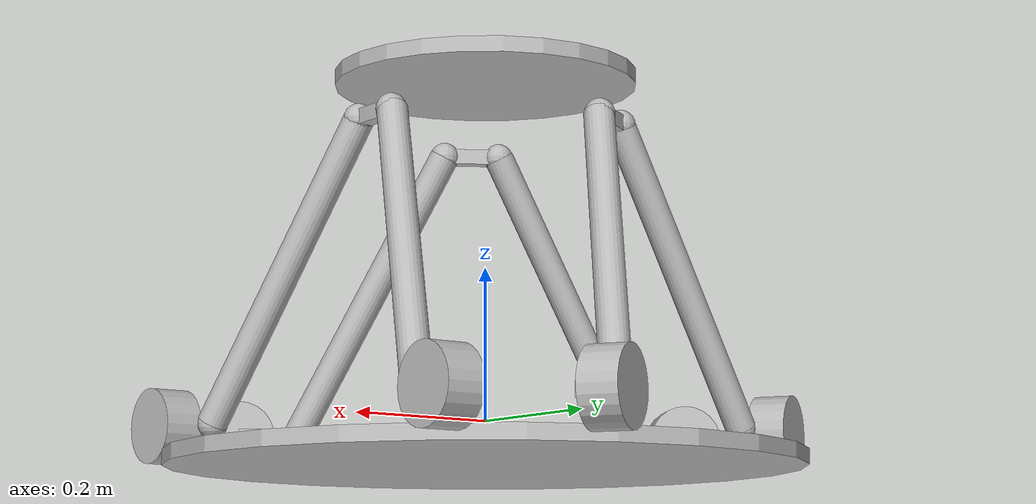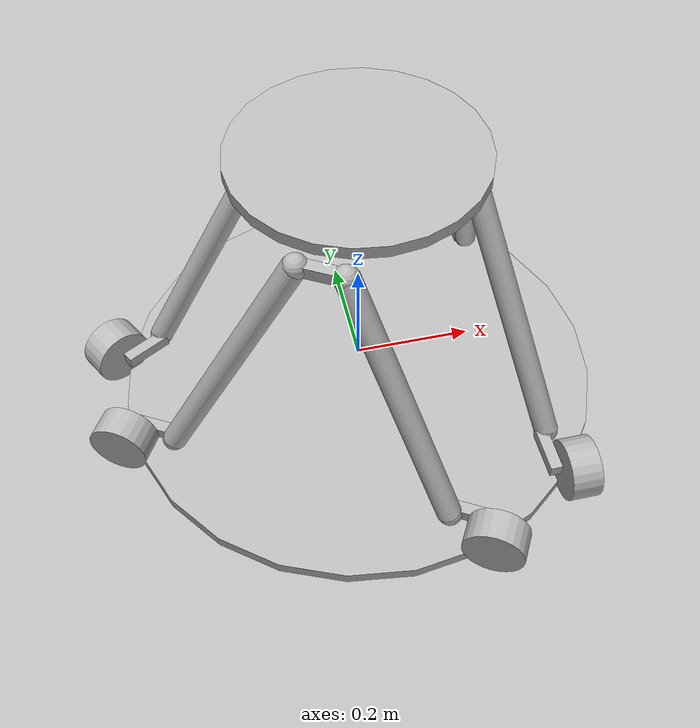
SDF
<?xml version="1.0" ?>

<sdf version="1.5">
<model name="stewart_platform">

	<!-- ** Links Definitions ** -->
	<!-- * Base Definitions * -->
	<link name="base_link">
		<!-- Position -->
		<pose>0 0  -0.05  0 0 0</pose>
		<!-- Shape -->
		<collision name="collision">
        <geometry>
          <cylinder>
            <radius> 0.4138840417314975 </radius>
            <length> 0.02 </length>
          </cylinder>
        </geometry>
      </collision>
      <visual name="visual">
        <geometry>
          <cylinder>
            <radius> 0.4138840417314975 </radius>
            <length> 0.02 </length>
          </cylinder>
        </geometry>
      </visual>
	</link>
	<!-- * Base Definitions * -->
	<link name="platform_link">
		<!-- Position -->
		<pose>0 0  0.45  0 0 0</pose>
		<!-- Shape -->
		<collision name="collision">
        <geometry>
          <cylinder>
            <radius> 0.1984313483298443 </radius>
            <length> 0.02 </length>
          </cylinder>
        </geometry>
      </collision>
      <visual name="visual">
        <geometry>
          <cylinder>
            <radius> 0.1984313483298443 </radius>
            <length> 0.02 </length>
          </cylinder>
        </geometry>
      </visual>
	</link>

		<!-- * Motor Definitions * -->
		<link name= "motor_0_link">
			<!-- Position -->
			<pose> 0.29346787517317596 -0.315 0 1.5707963267948966 0 1.5707963267948966</pose>
			<!-- Shape -->
			<collision name="collision">
        <geometry>
          <cylinder>
            <radius> 0.05 </radius>
            <length> 0.05 </length>
          </cylinder>
        </geometry>
      </collision>
      <visual name="visual">
        <geometry>
          <cylinder>
            <radius> 0.05 </radius>
            <length> 0.05 </length>
          </cylinder>
        </geometry>
      </visual>
		</link>
		<!-- * ARM Definitions * -->
		<link name="arm_0_link">
			<!-- Position -->
			<pose>  0.25846787517317593 -0.275 0 1.5707963267948966 0 0.0</pose>
			<!-- Shape -->
			<collision name="collision">
        <geometry>
         <box>
	     <size> 0.02 0.02 0.08 </size>
	 </box>
        </geometry>
      </collision>
      <visual name="visual">
        <geometry>
          <box>
	     <size> 0.02 0.02 0.08 </size>
	 </box>
        </geometry>
      </visual>
		</link>
		<!-- * RotuleDown Definitions * -->
		<link name="rotuleDown_0_link">
			<!-- Position -->
			<pose>  0.26846787517317594 -0.235 0 0 0 0 </pose>
			<!-- Shape -->
			<collision name="collision">
        <geometry>
          <sphere>
	    <radius> 0.02 </radius>
	 </sphere>
        </geometry>
      </collision>
      <visual name="visual">
        <geometry>
          <sphere>
	    <radius> 0.02 </radius>
	 </sphere>
        </geometry>
      </visual>
		</link>
		<!-- * Leg Definitions * -->
		<link name= "leg_0_link">
			<!-- Position -->
			<pose> 0.22166179551233733 -0.13624999999999998 0.190938808016556 0.5198299274421689 0 -2.690311012359247</pose>
			<!-- Shape -->
			<collision name="collision">
        <geometry>
          <cylinder>
            <radius> 0.02 </radius>
            <length> 0.44 </length>
          </cylinder>
        </geometry>
      </collision>
      <visual name="visual">
        <geometry>
          <cylinder>
            <radius> 0.02 </radius>
            <length> 0.44 </length>
          </cylinder>
        </geometry>
      </visual>
		</link>
		<!-- * RotuleUp Definitions * -->
		<link name="rotuleUp_0_link">
			<!-- Position -->
			<pose>  0.17485571585149873 -0.0375 0.381877616033112 0 0 0</pose>
			<!-- Shape -->
			<collision name="collision">
        <geometry>
          <sphere>
	    <radius> 0.02 </radius>
	 </sphere>
        </geometry>
      </collision>
      <visual name="visual">
        <geometry>
          <sphere>
	    <radius> 0.02 </radius>
	 </sphere>
        </geometry>
      </visual>
		</link>

		<!-- * Holder Definitions * -->
		<link name="holder_0_link">
			<!-- Position -->
			<pose>  0.17485571585149873 0.0 0.381877616033112 1.5707963267948966 0 0.0</pose>
			<!-- Shape -->
			<collision name="collision">
        <geometry>
         <box>
	     <size> 0.02 0.02 0.075 </size>
	 </box>
        </geometry>
      </collision>
      <visual name="visual">
        <geometry>
          <box>
	     <size> 0.02 0.02 0.075 </size>
	 </box>
        </geometry>
      </visual>
		</link>

		<!-- ** Joints Definitions ** -->
		<!-- * Platform-Motor Joint Definitions * -->
		<joint name="mot_fixed_0_joint" type="fixed">
			<parent>base_link</parent>
			<child>motor_0_link</child>
		</joint>
		<!-- * Motor-Arm Joint Definitions * -->
		<joint name="motor_0" type="revolute">
			<pose frame= "arm_0"> 0 0 0.04 0 0 </pose>
			<parent>motor_0_link</parent>
			<child>arm_0_link</child>
			<axis>
				<xyz>1 0 0</xyz>
			</axis>
		</joint>
		<!-- * Arm-RotuleDown Joint Definitions * -->
		<joint name="arm_rotDown_0_joint" type="fixed">
			<parent>arm_0_link</parent>
			<child>rotuleDown_0_link</child>
		</joint>
		<!-- * RotuleDown-Leg Joint Definitions * -->
		<joint name="rotDown_leg_0_joint" type="ball">
			<pose frame= "arm_0_link"> 0 0 -0.22 0 0 </pose>
			<parent>rotuleDown_0_link</parent>
			<child>leg_0_link</child>
		</joint>
		<!-- * Leg-RotuleUp Joint Definitions * -->
		<joint name="arm_rotUp_0_joint" type="fixed">
			<parent>leg_0_link</parent>
			<child>rotuleUp_0_link</child>
		</joint>
		<!-- * RotuleUp-Holder Joint Definitions * -->
		<joint name="rotUp_platform_0_joint" type="ball">
			<pose frame="rotuleUp_0_link"> 0 0 0 0 0 </pose>
			<child>rotuleUp_0_link</child>
			<parent>holder_0_link</parent>
		</joint>

		<!-- * RotuleUp-Holder Joint Definitions * -->
		<joint name="holder_platform_0_joint" type="fixed">
			<parent>holder_0_link</parent>
			<child>platform_link</child>
		</joint>

		<!-- * Motor Definitions * -->
		<link name= "motor_1_link">
			<!-- Position -->
			<pose> 0.29346787517317596 0.315 0 1.5707963267948966 0 1.5707963267948966</pose>
			<!-- Shape -->
			<collision name="collision">
        <geometry>
          <cylinder>
            <radius> 0.05 </radius>
            <length> 0.05 </length>
          </cylinder>
        </geometry>
      </collision>
      <visual name="visual">
        <geometry>
          <cylinder>
            <radius> 0.05 </radius>
            <length> 0.05 </length>
          </cylinder>
        </geometry>
      </visual>
		</link>
		<!-- * ARM Definitions * -->
		<link name="arm_1_link">
			<!-- Position -->
			<pose>  0.25846787517317593 0.275 0 1.5707963267948966 0 0.0</pose>
			<!-- Shape -->
			<collision name="collision">
        <geometry>
         <box>
	     <size> 0.02 0.02 0.08 </size>
	 </box>
        </geometry>
      </collision>
      <visual name="visual">
        <geometry>
          <box>
	     <size> 0.02 0.02 0.08 </size>
	 </box>
        </geometry>
      </visual>
		</link>
		<!-- * RotuleDown Definitions * -->
		<link name="rotuleDown_1_link">
			<!-- Position -->
			<pose>  0.26846787517317594 0.235 0 0 0 0 </pose>
			<!-- Shape -->
			<collision name="collision">
        <geometry>
          <sphere>
	    <radius> 0.02 </radius>
	 </sphere>
        </geometry>
      </collision>
      <visual name="visual">
        <geometry>
          <sphere>
	    <radius> 0.02 </radius>
	 </sphere>
        </geometry>
      </visual>
		</link>
		<!-- * Leg Definitions * -->
		<link name= "leg_1_link">
			<!-- Position -->
			<pose> 0.22166179551233733 0.13624999999999998 0.190938808016556 0.5198299274421689 0 -0.45128164123054637</pose>
			<!-- Shape -->
			<collision name="collision">
        <geometry>
          <cylinder>
            <radius> 0.02 </radius>
            <length> 0.44 </length>
          </cylinder>
        </geometry>
      </collision>
      <visual name="visual">
        <geometry>
          <cylinder>
            <radius> 0.02 </radius>
            <length> 0.44 </length>
          </cylinder>
        </geometry>
      </visual>
		</link>
		<!-- * RotuleUp Definitions * -->
		<link name="rotuleUp_1_link">
			<!-- Position -->
			<pose>  0.17485571585149873 0.0375 0.381877616033112 0 0 0</pose>
			<!-- Shape -->
			<collision name="collision">
        <geometry>
          <sphere>
	    <radius> 0.02 </radius>
	 </sphere>
        </geometry>
      </collision>
      <visual name="visual">
        <geometry>
          <sphere>
	    <radius> 0.02 </radius>
	 </sphere>
        </geometry>
      </visual>
		</link>

		<!-- ** Joints Definitions ** -->
		<!-- * Platform-Motor Joint Definitions * -->
		<joint name="mot_fixed_1_joint" type="fixed">
			<parent>base_link</parent>
			<child>motor_1_link</child>
		</joint>
		<!-- * Motor-Arm Joint Definitions * -->
		<joint name="motor_1" type="revolute">
			<pose frame= "arm_1"> 0 0 -0.04 0 0 </pose>
			<parent>motor_1_link</parent>
			<child>arm_1_link</child>
			<axis>
				<xyz>1 0 0</xyz>
			</axis>
		</joint>
		<!-- * Arm-RotuleDown Joint Definitions * -->
		<joint name="arm_rotDown_1_joint" type="fixed">
			<parent>arm_1_link</parent>
			<child>rotuleDown_1_link</child>
		</joint>
		<!-- * RotuleDown-Leg Joint Definitions * -->
		<joint name="rotDown_leg_1_joint" type="ball">
			<pose frame= "arm_1_link"> 0 0 -0.22 0 0 </pose>
			<parent>rotuleDown_1_link</parent>
			<child>leg_1_link</child>
		</joint>
		<!-- * Leg-RotuleUp Joint Definitions * -->
		<joint name="arm_rotUp_1_joint" type="fixed">
			<parent>leg_1_link</parent>
			<child>rotuleUp_1_link</child>
		</joint>
		<!-- * RotuleUp-Holder Joint Definitions * -->
		<joint name="rotUp_platform_1_joint" type="ball">
			<pose frame="rotuleUp_1_link"> 0 0 0 0 0 </pose>
			<child>rotuleUp_1_link</child>
			<parent>holder_0_link</parent>
		</joint>

		<!-- * Motor Definitions * -->
		<link name= "motor_2_link">
			<!-- Position -->
			<pose> 0.12606406460551028 0.41165063509461086 0 1.5707963267948966 0 3.665191429188092</pose>
			<!-- Shape -->
			<collision name="collision">
        <geometry>
          <cylinder>
            <radius> 0.05 </radius>
            <length> 0.05 </length>
          </cylinder>
        </geometry>
      </collision>
      <visual name="visual">
        <geometry>
          <cylinder>
            <radius> 0.05 </radius>
            <length> 0.05 </length>
          </cylinder>
        </geometry>
      </visual>
		</link>
		<!-- * ARM Definitions * -->
		<link name="arm_2_link">
			<!-- Position -->
			<pose>  0.10892304845413273 0.36133974596215557 0 1.5707963267948966 0 2.0943951023931953</pose>
			<!-- Shape -->
			<collision name="collision">
        <geometry>
         <box>
	     <size> 0.02 0.02 0.08 </size>
	 </box>
        </geometry>
      </collision>
      <visual name="visual">
        <geometry>
          <box>
	     <size> 0.02 0.02 0.08 </size>
	 </box>
        </geometry>
      </visual>
		</link>
		<!-- * RotuleDown Definitions * -->
		<link name="rotuleDown_2_link">
			<!-- Position -->
			<pose>  0.06928203230275518 0.3499999999999999 0 0 0 0 </pose>
			<!-- Shape -->
			<collision name="collision">
        <geometry>
          <sphere>
	    <radius> 0.02 </radius>
	 </sphere>
        </geometry>
      </collision>
      <visual name="visual">
        <geometry>
          <sphere>
	    <radius> 0.02 </radius>
	 </sphere>
        </geometry>
      </visual>
		</link>
		<!-- * Leg Definitions * -->
		<link name= "leg_2_link">
			<!-- Position -->
			<pose> 0.007165063509461146 0.2600897459621556 0.190938808016556 0.5198299274421689 0 -0.5959159099660516</pose>
			<!-- Shape -->
			<collision name="collision">
        <geometry>
          <cylinder>
            <radius> 0.02 </radius>
            <length> 0.44 </length>
          </cylinder>
        </geometry>
      </collision>
      <visual name="visual">
        <geometry>
          <cylinder>
            <radius> 0.02 </radius>
            <length> 0.44 </length>
          </cylinder>
        </geometry>
      </visual>
		</link>
		<!-- * RotuleUp Definitions * -->
		<link name="rotuleUp_2_link">
			<!-- Position -->
			<pose>  -0.05495190528383288 0.17017949192431125 0.381877616033112 0 0 0</pose>
			<!-- Shape -->
			<collision name="collision">
        <geometry>
          <sphere>
	    <radius> 0.02 </radius>
	 </sphere>
        </geometry>
      </collision>
      <visual name="visual">
        <geometry>
          <sphere>
	    <radius> 0.02 </radius>
	 </sphere>
        </geometry>
      </visual>
		</link>

		<!-- * Holder Definitions * -->
		<link name="holder_1_link">
			<!-- Position -->
			<pose>  -0.08742785792574934 0.15142949192431127 0.381877616033112 1.5707963267948966 0 2.0943951023931953</pose>
			<!-- Shape -->
			<collision name="collision">
        <geometry>
         <box>
	     <size> 0.02 0.02 0.075 </size>
	 </box>
        </geometry>
      </collision>
      <visual name="visual">
        <geometry>
          <box>
	     <size> 0.02 0.02 0.075 </size>
	 </box>
        </geometry>
      </visual>
		</link>

		<!-- ** Joints Definitions ** -->
		<!-- * Platform-Motor Joint Definitions * -->
		<joint name="mot_fixed_2_joint" type="fixed">
			<parent>base_link</parent>
			<child>motor_2_link</child>
		</joint>
		<!-- * Motor-Arm Joint Definitions * -->
		<joint name="motor_2" type="revolute">
			<pose frame= "arm_2"> 0 0 0.04 0 0 </pose>
			<parent>motor_2_link</parent>
			<child>arm_2_link</child>
			<axis>
				<xyz>1 0 0</xyz>
			</axis>
		</joint>
		<!-- * Arm-RotuleDown Joint Definitions * -->
		<joint name="arm_rotDown_2_joint" type="fixed">
			<parent>arm_2_link</parent>
			<child>rotuleDown_2_link</child>
		</joint>
		<!-- * RotuleDown-Leg Joint Definitions * -->
		<joint name="rotDown_leg_2_joint" type="ball">
			<pose frame= "arm_2_link"> 0 0 -0.22 0 0 </pose>
			<parent>rotuleDown_2_link</parent>
			<child>leg_2_link</child>
		</joint>
		<!-- * Leg-RotuleUp Joint Definitions * -->
		<joint name="arm_rotUp_2_joint" type="fixed">
			<parent>leg_2_link</parent>
			<child>rotuleUp_2_link</child>
		</joint>
		<!-- * RotuleUp-Holder Joint Definitions * -->
		<joint name="rotUp_platform_2_joint" type="ball">
			<pose frame="rotuleUp_2_link"> 0 0 0 0 0 </pose>
			<child>rotuleUp_2_link</child>
			<parent>holder_1_link</parent>
		</joint>

		<!-- * RotuleUp-Holder Joint Definitions * -->
		<joint name="holder_platform_1_joint" type="fixed">
			<parent>holder_1_link</parent>
			<child>platform_link</child>
		</joint>

		<!-- * Motor Definitions * -->
		<link name= "motor_3_link">
			<!-- Position -->
			<pose> -0.41953193977868614 0.09665063509461105 0 1.5707963267948966 0 3.665191429188092</pose>
			<!-- Shape -->
			<collision name="collision">
        <geometry>
          <cylinder>
            <radius> 0.05 </radius>
            <length> 0.05 </length>
          </cylinder>
        </geometry>
      </collision>
      <visual name="visual">
        <geometry>
          <cylinder>
            <radius> 0.05 </radius>
            <length> 0.05 </length>
          </cylinder>
        </geometry>
      </visual>
		</link>
		<!-- * ARM Definitions * -->
		<link name="arm_3_link">
			<!-- Position -->
			<pose>  -0.3673909236273086 0.08633974596215568 0 1.5707963267948966 0 2.0943951023931953</pose>
			<!-- Shape -->
			<collision name="collision">
        <geometry>
         <box>
	     <size> 0.02 0.02 0.08 </size>
	 </box>
        </geometry>
      </collision>
      <visual name="visual">
        <geometry>
          <box>
	     <size> 0.02 0.02 0.08 </size>
	 </box>
        </geometry>
      </visual>
		</link>
		<!-- * RotuleDown Definitions * -->
		<link name="rotuleDown_3_link">
			<!-- Position -->
			<pose>  -0.33774990747593103 0.11500000000000006 0 0 0 0 </pose>
			<!-- Shape -->
			<collision name="collision">
        <geometry>
          <sphere>
	    <radius> 0.02 </radius>
	 </sphere>
        </geometry>
      </collision>
      <visual name="visual">
        <geometry>
          <sphere>
	    <radius> 0.02 </radius>
	 </sphere>
        </geometry>
      </visual>
		</link>
		<!-- * Leg Definitions * -->
		<link name= "leg_3_link">
			<!-- Position -->
			<pose> -0.2288268590217984 0.12383974596215566 0.190938808016556 0.5198299274421689 0 1.6431134611626488</pose>
			<!-- Shape -->
			<collision name="collision">
        <geometry>
          <cylinder>
            <radius> 0.02 </radius>
            <length> 0.44 </length>
          </cylinder>
        </geometry>
      </collision>
      <visual name="visual">
        <geometry>
          <cylinder>
            <radius> 0.02 </radius>
            <length> 0.44 </length>
          </cylinder>
        </geometry>
      </visual>
		</link>
		<!-- * RotuleUp Definitions * -->
		<link name="rotuleUp_3_link">
			<!-- Position -->
			<pose>  -0.11990381056766576 0.13267949192431125 0.381877616033112 0 0 0</pose>
			<!-- Shape -->
			<collision name="collision">
        <geometry>
          <sphere>
	    <radius> 0.02 </radius>
	 </sphere>
        </geometry>
      </collision>
      <visual name="visual">
        <geometry>
          <sphere>
	    <radius> 0.02 </radius>
	 </sphere>
        </geometry>
      </visual>
		</link>

		<!-- ** Joints Definitions ** -->
		<!-- * Platform-Motor Joint Definitions * -->
		<joint name="mot_fixed_3_joint" type="fixed">
			<parent>base_link</parent>
			<child>motor_3_link</child>
		</joint>
		<!-- * Motor-Arm Joint Definitions * -->
		<joint name="motor_3" type="revolute">
			<pose frame= "arm_3"> 0 0 -0.04 0 0 </pose>
			<parent>motor_3_link</parent>
			<child>arm_3_link</child>
			<axis>
				<xyz>1 0 0</xyz>
			</axis>
		</joint>
		<!-- * Arm-RotuleDown Joint Definitions * -->
		<joint name="arm_rotDown_3_joint" type="fixed">
			<parent>arm_3_link</parent>
			<child>rotuleDown_3_link</child>
		</joint>
		<!-- * RotuleDown-Leg Joint Definitions * -->
		<joint name="rotDown_leg_3_joint" type="ball">
			<pose frame= "arm_3_link"> 0 0 -0.22 0 0 </pose>
			<parent>rotuleDown_3_link</parent>
			<child>leg_3_link</child>
		</joint>
		<!-- * Leg-RotuleUp Joint Definitions * -->
		<joint name="arm_rotUp_3_joint" type="fixed">
			<parent>leg_3_link</parent>
			<child>rotuleUp_3_link</child>
		</joint>
		<!-- * RotuleUp-Holder Joint Definitions * -->
		<joint name="rotUp_platform_3_joint" type="ball">
			<pose frame="rotuleUp_3_link"> 0 0 0 0 0 </pose>
			<child>rotuleUp_3_link</child>
			<parent>holder_1_link</parent>
		</joint>

		<!-- * Motor Definitions * -->
		<link name= "motor_4_link">
			<!-- Position -->
			<pose> -0.4195319397786862 -0.09665063509461076 0 1.5707963267948966 0 5.759586531581287</pose>
			<!-- Shape -->
			<collision name="collision">
        <geometry>
          <cylinder>
            <radius> 0.05 </radius>
            <length> 0.05 </length>
          </cylinder>
        </geometry>
      </collision>
      <visual name="visual">
        <geometry>
          <cylinder>
            <radius> 0.05 </radius>
            <length> 0.05 </length>
          </cylinder>
        </geometry>
      </visual>
		</link>
		<!-- * ARM Definitions * -->
		<link name="arm_4_link">
			<!-- Position -->
			<pose>  -0.36739092362730863 -0.08633974596215543 0 1.5707963267948966 0 4.1887902047863905</pose>
			<!-- Shape -->
			<collision name="collision">
        <geometry>
         <box>
	     <size> 0.02 0.02 0.08 </size>
	 </box>
        </geometry>
      </collision>
      <visual name="visual">
        <geometry>
          <box>
	     <size> 0.02 0.02 0.08 </size>
	 </box>
        </geometry>
      </visual>
		</link>
		<!-- * RotuleDown Definitions * -->
		<link name="rotuleDown_4_link">
			<!-- Position -->
			<pose>  -0.3377499074759311 -0.11499999999999984 0 0 0 0 </pose>
			<!-- Shape -->
			<collision name="collision">
        <geometry>
          <sphere>
	    <radius> 0.02 </radius>
	 </sphere>
        </geometry>
      </collision>
      <visual name="visual">
        <geometry>
          <sphere>
	    <radius> 0.02 </radius>
	 </sphere>
        </geometry>
      </visual>
		</link>
		<!-- * Leg Definitions * -->
		<link name= "leg_4_link">
			<!-- Position -->
			<pose> -0.22882685902179847 -0.1238397459621555 0.190938808016556 0.5198299274421689 0 1.498479192427144</pose>
			<!-- Shape -->
			<collision name="collision">
        <geometry>
          <cylinder>
            <radius> 0.02 </radius>
            <length> 0.44 </length>
          </cylinder>
        </geometry>
      </collision>
      <visual name="visual">
        <geometry>
          <cylinder>
            <radius> 0.02 </radius>
            <length> 0.44 </length>
          </cylinder>
        </geometry>
      </visual>
		</link>
		<!-- * RotuleUp Definitions * -->
		<link name="rotuleUp_4_link">
			<!-- Position -->
			<pose>  -0.11990381056766586 -0.13267949192431117 0.381877616033112 0 0 0</pose>
			<!-- Shape -->
			<collision name="collision">
        <geometry>
          <sphere>
	    <radius> 0.02 </radius>
	 </sphere>
        </geometry>
      </collision>
      <visual name="visual">
        <geometry>
          <sphere>
	    <radius> 0.02 </radius>
	 </sphere>
        </geometry>
      </visual>
		</link>

		<!-- * Holder Definitions * -->
		<link name="holder_2_link">
			<!-- Position -->
			<pose>  -0.08742785792574942 -0.15142949192431118 0.381877616033112 1.5707963267948966 0 4.1887902047863905</pose>
			<!-- Shape -->
			<collision name="collision">
        <geometry>
         <box>
	     <size> 0.02 0.02 0.075 </size>
	 </box>
        </geometry>
      </collision>
      <visual name="visual">
        <geometry>
          <box>
	     <size> 0.02 0.02 0.075 </size>
	 </box>
        </geometry>
      </visual>
		</link>

		<!-- ** Joints Definitions ** -->
		<!-- * Platform-Motor Joint Definitions * -->
		<joint name="mot_fixed_4_joint" type="fixed">
			<parent>base_link</parent>
			<child>motor_4_link</child>
		</joint>
		<!-- * Motor-Arm Joint Definitions * -->
		<joint name="motor_4" type="revolute">
			<pose frame= "arm_4"> 0 0 0.04 0 0 </pose>
			<parent>motor_4_link</parent>
			<child>arm_4_link</child>
			<axis>
				<xyz>1 0 0</xyz>
			</axis>
		</joint>
		<!-- * Arm-RotuleDown Joint Definitions * -->
		<joint name="arm_rotDown_4_joint" type="fixed">
			<parent>arm_4_link</parent>
			<child>rotuleDown_4_link</child>
		</joint>
		<!-- * RotuleDown-Leg Joint Definitions * -->
		<joint name="rotDown_leg_4_joint" type="ball">
			<pose frame= "arm_4_link"> 0 0 -0.22 0 0 </pose>
			<parent>rotuleDown_4_link</parent>
			<child>leg_4_link</child>
		</joint>
		<!-- * Leg-RotuleUp Joint Definitions * -->
		<joint name="arm_rotUp_4_joint" type="fixed">
			<parent>leg_4_link</parent>
			<child>rotuleUp_4_link</child>
		</joint>
		<!-- * RotuleUp-Holder Joint Definitions * -->
		<joint name="rotUp_platform_4_joint" type="ball">
			<pose frame="rotuleUp_4_link"> 0 0 0 0 0 </pose>
			<child>rotuleUp_4_link</child>
			<parent>holder_2_link</parent>
		</joint>

		<!-- * RotuleUp-Holder Joint Definitions * -->
		<joint name="holder_platform_2_joint" type="fixed">
			<parent>holder_2_link</parent>
			<child>platform_link</child>
		</joint>

		<!-- * Motor Definitions * -->
		<link name= "motor_5_link">
			<!-- Position -->
			<pose> 0.12606406460551017 -0.4116506350946109 0 1.5707963267948966 0 5.759586531581287</pose>
			<!-- Shape -->
			<collision name="collision">
        <geometry>
          <cylinder>
            <radius> 0.05 </radius>
            <length> 0.05 </length>
          </cylinder>
        </geometry>
      </collision>
      <visual name="visual">
        <geometry>
          <cylinder>
            <radius> 0.05 </radius>
            <length> 0.05 </length>
          </cylinder>
        </geometry>
      </visual>
		</link>
		<!-- * ARM Definitions * -->
		<link name="arm_5_link">
			<!-- Position -->
			<pose>  0.10892304845413264 -0.36133974596215557 0 1.5707963267948966 0 4.1887902047863905</pose>
			<!-- Shape -->
			<collision name="collision">
        <geometry>
         <box>
	     <size> 0.02 0.02 0.08 </size>
	 </box>
        </geometry>
      </collision>
      <visual name="visual">
        <geometry>
          <box>
	     <size> 0.02 0.02 0.08 </size>
	 </box>
        </geometry>
      </visual>
		</link>
		<!-- * RotuleDown Definitions * -->
		<link name="rotuleDown_5_link">
			<!-- Position -->
			<pose>  0.0692820323027551 -0.3499999999999999 0 0 0 0 </pose>
			<!-- Shape -->
			<collision name="collision">
        <geometry>
          <sphere>
	    <radius> 0.02 </radius>
	 </sphere>
        </geometry>
      </collision>
      <visual name="visual">
        <geometry>
          <sphere>
	    <radius> 0.02 </radius>
	 </sphere>
        </geometry>
      </visual>
		</link>
		<!-- * Leg Definitions * -->
		<link name= "leg_5_link">
			<!-- Position -->
			<pose> 0.007165063509461098 -0.26008974596215556 0.19093880801655602 0.5198299274421687 0 3.7375085635558443</pose>
			<!-- Shape -->
			<collision name="collision">
        <geometry>
          <cylinder>
            <radius> 0.02 </radius>
            <length> 0.44 </length>
          </cylinder>
        </geometry>
      </collision>
      <visual name="visual">
        <geometry>
          <cylinder>
            <radius> 0.02 </radius>
            <length> 0.44 </length>
          </cylinder>
        </geometry>
      </visual>
		</link>
		<!-- * RotuleUp Definitions * -->
		<link name="rotuleUp_5_link">
			<!-- Position -->
			<pose>  -0.05495190528383291 -0.17017949192431123 0.38187761603311204 0 0 0</pose>
			<!-- Shape -->
			<collision name="collision">
        <geometry>
          <sphere>
	    <radius> 0.02 </radius>
	 </sphere>
        </geometry>
      </collision>
      <visual name="visual">
        <geometry>
          <sphere>
	    <radius> 0.02 </radius>
	 </sphere>
        </geometry>
      </visual>
		</link>

		<!-- ** Joints Definitions ** -->
		<!-- * Platform-Motor Joint Definitions * -->
		<joint name="mot_fixed_5_joint" type="fixed">
			<parent>base_link</parent>
			<child>motor_5_link</child>
		</joint>
		<!-- * Motor-Arm Joint Definitions * -->
		<joint name="motor_5" type="revolute">
			<pose frame= "arm_5"> 0 0 -0.04 0 0 </pose>
			<parent>motor_5_link</parent>
			<child>arm_5_link</child>
			<axis>
				<xyz>1 0 0</xyz>
			</axis>
		</joint>
		<!-- * Arm-RotuleDown Joint Definitions * -->
		<joint name="arm_rotDown_5_joint" type="fixed">
			<parent>arm_5_link</parent>
			<child>rotuleDown_5_link</child>
		</joint>
		<!-- * RotuleDown-Leg Joint Definitions * -->
		<joint name="rotDown_leg_5_joint" type="ball">
			<pose frame= "arm_5_link"> 0 0 -0.22 0 0 </pose>
			<parent>rotuleDown_5_link</parent>
			<child>leg_5_link</child>
		</joint>
		<!-- * Leg-RotuleUp Joint Definitions * -->
		<joint name="arm_rotUp_5_joint" type="fixed">
			<parent>leg_5_link</parent>
			<child>rotuleUp_5_link</child>
		</joint>
		<!-- * RotuleUp-Holder Joint Definitions * -->
		<joint name="rotUp_platform_5_joint" type="ball">
			<pose frame="rotuleUp_5_link"> 0 0 0 0 0 </pose>
			<child>rotuleUp_5_link</child>
			<parent>holder_2_link</parent>
		</joint>

</model>
</sdf>
